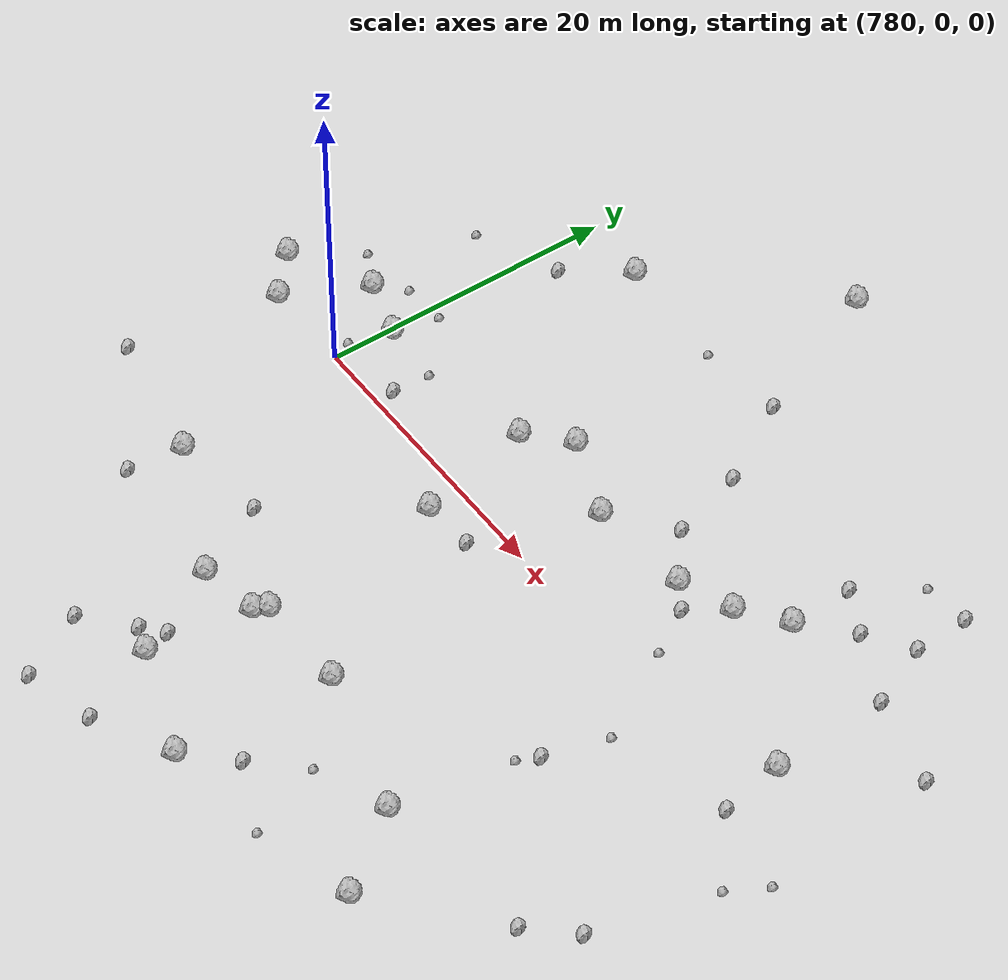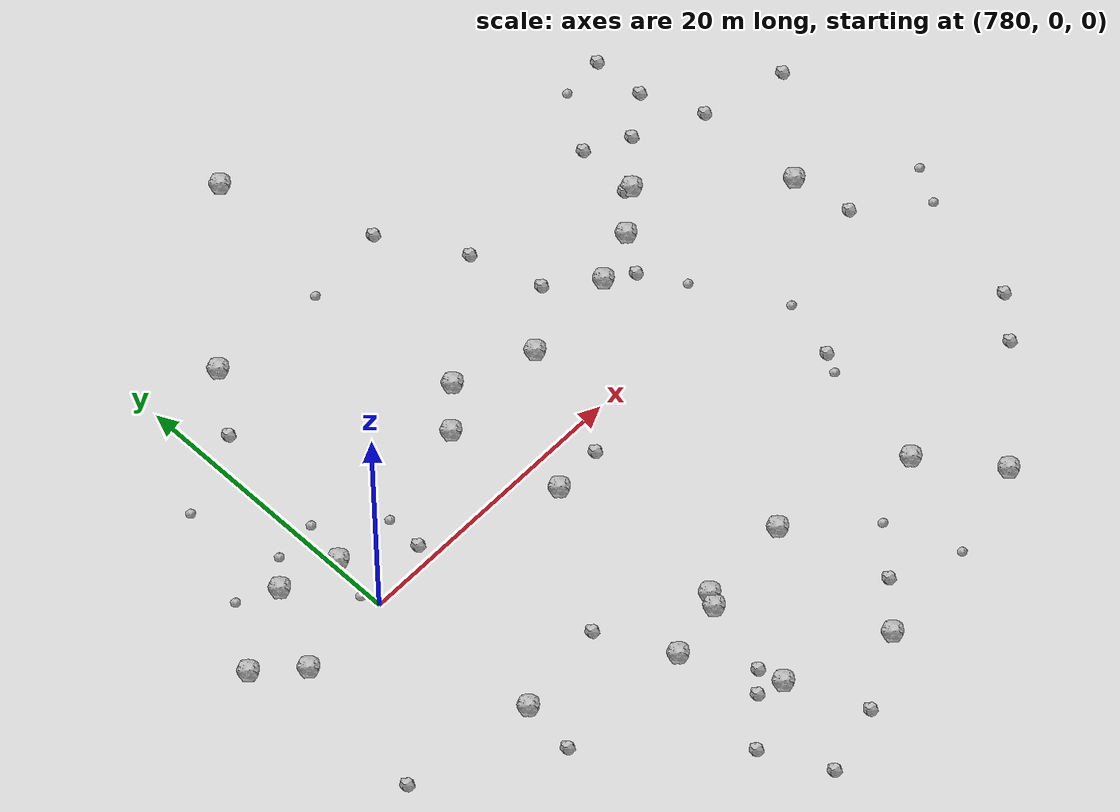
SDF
<sdf version="1.6">
 <world name="default">
  <include><uri>model://sun</uri></include>
  <model name="rock1_20_4">
   <include><uri>model://rock1</uri><pose>792.0432619200488 5.475375541688543 0.5 0 0 0</pose></include>
  </model>
  <model name="rock1_20_5">
   <include><uri>model://rock1</uri><pose>776.411994897831 5.2289610290234165 0.5 0 0 0</pose></include>
  </model>
  <model name="rock1_20_6">
   <include><uri>model://rock1</uri><pose>794.2989229113439 -15.289086107395315 0.5 0 0 0</pose></include>
  </model>
  <model name="rock1_20_7">
   <include><uri>model://rock1</uri><pose>790.2826156785715 -15.9887940129748 0.5 0 0 0</pose></include>
  </model>
  <model name="rock1_20_8">
   <include><uri>model://rock1</uri><pose>810.8418894843378 -16.901684017481614 0.5 0 0 0</pose></include>
  </model>
  <model name="rock1_20_9">
   <include><uri>model://rock1</uri><pose>793.7962750382941 -2.3656697763438927 0.5 0 0 0</pose></include>
  </model>
  <model name="rock1_20_10">
   <include><uri>model://rock1</uri><pose>807.0009286291477 6.33940477363776 0.5 0 0 0</pose></include>
  </model>
  <model name="rock1_20_11">
   <include><uri>model://rock1</uri><pose>810.5434943508014 7.680882405998204 0.5 0 0 0</pose></include>
  </model>
  <model name="rock1_20_12">
   <include><uri>model://rock1</uri><pose>814.511290356567 -21.939810519787876 0.5 0 0 0</pose></include>
  </model>
  <model name="rock1_20_13">
   <include><uri>model://rock1</uri><pose>794.6327681095335 7.88072967388257 0.5 0 0 0</pose></include>
  </model>
  <model name="rock1_20_14">
   <include><uri>model://rock1</uri><pose>800.0509585136283 5.770461905904597 0.5 0 0 0</pose></include>
  </model>
  <model name="rock1_20_15">
   <include><uri>model://rock1</uri><pose>813.377536852357 9.876837006438272 0.5 0 0 0</pose></include>
  </model>
  <model name="rock1_20_16">
   <include><uri>model://rock1</uri><pose>794.7961253080841 -14.445040182598582 0.5 0 0 0</pose></include>
  </model>
  <model name="rock1_20_17">
   <include><uri>model://rock1</uri><pose>800.649227772791 -24.59825876537117 0.5 0 0 0</pose></include>
  </model>
  <model name="rock1_20_18">
   <include><uri>model://rock1</uri><pose>795.0094261336665 29.364301911772365 0.5 0 0 0</pose></include>
  </model>
  <model name="rock1_20_19">
   <include><uri>model://rock1</uri><pose>821.1830058799677 2.699733716120889 0.5 0 0 0</pose></include>
  </model>
  <model name="rock1_20_20">
   <include><uri>model://rock1</uri><pose>770.8907837006122 2.449523252172021 0.5 0 0 0</pose></include>
  </model>
  <model name="rock1_20_21">
   <include><uri>model://rock1</uri><pose>785.0424278979466 19.447728655445125 0.5 0 0 0</pose></include>
  </model>
  <model name="rock1_20_22">
   <include><uri>model://rock1</uri><pose>793.3731890653055 -22.045336720176632 0.5 0 0 0</pose></include>
  </model>
  <model name="rock1_20_23">
   <include><uri>model://rock1</uri><pose>801.2223780719171 -14.300071904193922 0.5 0 0 0</pose></include>
  </model>
  <model name="rock1_20_24">
   <include><uri>model://rock1</uri><pose>781.1641375801453 -11.82323209225364 0.5 0 0 0</pose></include>
  </model>
  <model name="rock1_20_25">
   <include><uri>model://rock1</uri><pose>780.4154413438764 4.0348928412731695 0.5 0 0 0</pose></include>
  </model>
  <model name="rock1_20_26">
   <include><uri>model://rock1</uri><pose>773.6690786842182 -0.07888884894688886 0.5 0 0 0</pose></include>
  </model>
  <model name="rock2_20_0">
   <include><uri>model://rock2</uri><pose>821.8701528703589 -1.4552187002242647 0.3 0 0 0</pose></include>
  </model>
  <model name="rock2_20_1">
   <include><uri>model://rock2</uri><pose>826.7807739509537 8.959604316129358 0.3 0 0 0</pose></include>
  </model>
  <model name="rock2_20_2">
   <include><uri>model://rock2</uri><pose>803.3665772782281 -21.764891446140492 0.3 0 0 0</pose></include>
  </model>
  <model name="rock2_20_3">
   <include><uri>model://rock2</uri><pose>799.1485782244073 19.51724856472054 0.3 0 0 0</pose></include>
  </model>
  <model name="rock2_20_4">
   <include><uri>model://rock2</uri><pose>784.6447528109542 1.2147670200116458 0.3 0 0 0</pose></include>
  </model>
  <model name="rock2_20_5">
   <include><uri>model://rock2</uri><pose>792.932812990394 -20.273119648555323 0.3 0 0 0</pose></include>
  </model>
  <model name="rock2_20_6">
   <include><uri>model://rock2</uri><pose>819.0883102957307 14.620927303200844 0.3 0 0 0</pose></include>
  </model>
  <model name="rock2_20_7">
   <include><uri>model://rock2</uri><pose>797.3047033561336 -2.11832344289067 0.3 0 0 0</pose></include>
  </model>
  <model name="rock2_20_8">
   <include><uri>model://rock2</uri><pose>818.9413707103943 18.327628964871415 0.3 0 0 0</pose></include>
  </model>
  <model name="rock2_20_9">
   <include><uri>model://rock2</uri><pose>808.8089448336614 5.211159528847105 0.3 0 0 0</pose></include>
  </model>
  <model name="rock2_20_10">
   <include><uri>model://rock2</uri><pose>790.9951573473741 -28.496049792995972 0.3 0 0 0</pose></include>
  </model>
  <model name="rock2_20_11">
   <include><uri>model://rock2</uri><pose>824.1007457505173 -12.949401534770505 0.3 0 0 0</pose></include>
  </model>
  <model name="rock2_20_12">
   <include><uri>model://rock2</uri><pose>816.2465543533481 12.651771226127245 0.3 0 0 0</pose></include>
  </model>
  <model name="rock2_20_13">
   <include><uri>model://rock2</uri><pose>782.0652825477138 15.564217692374541 0.3 0 0 0</pose></include>
  </model>
  <model name="rock2_20_14">
   <include><uri>model://rock2</uri><pose>802.3713672145468 13.936445525075833 0.3 0 0 0</pose></include>
  </model>
  <model name="rock2_20_15">
   <include><uri>model://rock2</uri><pose>787.7352293923759 -10.962548537516827 0.3 0 0 0</pose></include>
  </model>
  <model name="rock2_20_16">
   <include><uri>model://rock2</uri><pose>813.2647624060863 14.18490739267655 0.3 0 0 0</pose></include>
  </model>
  <model name="rock2_20_17">
   <include><uri>model://rock2</uri><pose>780.7490845490229 -15.521860571408503 0.3 0 0 0</pose></include>
  </model>
  <model name="rock2_20_18">
   <include><uri>model://rock2</uri><pose>788.7114392575559 -24.04005873447408 0.3 0 0 0</pose></include>
  </model>
  <model name="rock2_20_19">
   <include><uri>model://rock2</uri><pose>821.6535881194852 -15.630733113301442 0.3 0 0 0</pose></include>
  </model>
  <model name="rock2_20_20">
   <include><uri>model://rock2</uri><pose>772.0627828031987 -10.173961877320846 0.3 0 0 0</pose></include>
  </model>
  <model name="rock2_20_21">
   <include><uri>model://rock2</uri><pose>803.8700118277305 8.944587485633065 0.3 0 0 0</pose></include>
  </model>
  <model name="rock2_20_22">
   <include><uri>model://rock2</uri><pose>812.8444619416014 -7.784618142603538 0.3 0 0 0</pose></include>
  </model>
  <model name="rock2_20_23">
   <include><uri>model://rock2</uri><pose>795.6730762387189 -27.226946611378516 0.3 0 0 0</pose></include>
  </model>
  <model name="rock2_20_24">
   <include><uri>model://rock2</uri><pose>812.8367853663777 10.081412176157876 0.3 0 0 0</pose></include>
  </model>
  <model name="rock2_20_25">
   <include><uri>model://rock2</uri><pose>791.6114785985775 -21.43789849099161 0.3 0 0 0</pose></include>
  </model>
  <model name="rock2_20_26">
   <include><uri>model://rock2</uri><pose>820.8876654788486 10.467796233641117 0.3 0 0 0</pose></include>
  </model>
  <model name="rock3_20_0">
   <include><uri>model://rock3</uri><pose>793.270153740084 18.926425552237063 0.2 0 0 0</pose></include>
  </model>
  <model name="rock3_20_1">
   <include><uri>model://rock3</uri><pose>777.995863532119 6.905973213464179 0.2 0 0 0</pose></include>
  </model>
  <model name="rock3_20_2">
   <include><uri>model://rock3</uri><pose>806.0742255133399 -18.81671743512417 0.2 0 0 0</pose></include>
  </model>
  <model name="rock3_20_3">
   <include><uri>model://rock3</uri><pose>779.5501596527942 1.2354717145692646 0.2 0 0 0</pose></include>
  </model>
  <model name="rock3_20_4">
   <include><uri>model://rock3</uri><pose>812.1499399219998 -9.121277495409327 0.2 0 0 0</pose></include>
  </model>
  <model name="rock3_20_5">
   <include><uri>model://rock3</uri><pose>807.9780915557362 -23.82665183326371 0.2 0 0 0</pose></include>
  </model>
  <model name="rock3_20_6">
   <include><uri>model://rock3</uri><pose>773.797704340816 6.580768581944909 0.2 0 0 0</pose></include>
  </model>
  <model name="rock3_20_7">
   <include><uri>model://rock3</uri><pose>815.8014998059139 18.033760462138105 0.2 0 0 0</pose></include>
  </model>
  <model name="rock3_20_8">
   <include><uri>model://rock3</uri><pose>784.7308503009086 3.790190798186444 0.2 0 0 0</pose></include>
  </model>
  <model name="rock3_20_9">
   <include><uri>model://rock3</uri><pose>827.4779489135982 -2.5820792362828655 0.2 0 0 0</pose></include>
  </model>
  <model name="rock3_20_10">
   <include><uri>model://rock3</uri><pose>826.131005591884 -5.016501972308099 0.2 0 0 0</pose></include>
  </model>
  <model name="rock3_20_11">
   <include><uri>model://rock3</uri><pose>781.0137660906458 7.093785859711282 0.2 0 0 0</pose></include>
  </model>
  <model name="rock3_20_12">
   <include><uri>model://rock3</uri><pose>813.9652004099444 -3.6986165651983107 0.2 0 0 0</pose></include>
  </model>
  <model name="rock3_20_13">
   <include><uri>model://rock3</uri><pose>810.554491325932 2.22683465869936 0.2 0 0 0</pose></include>
  </model>
  <model name="rock3_20_14">
   <include><uri>model://rock3</uri><pose>776.3658652288664 13.188370427886198 0.2 0 0 0</pose></include>
  </model>
 </world>
</sdf>
